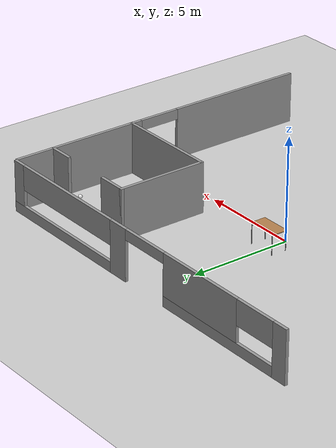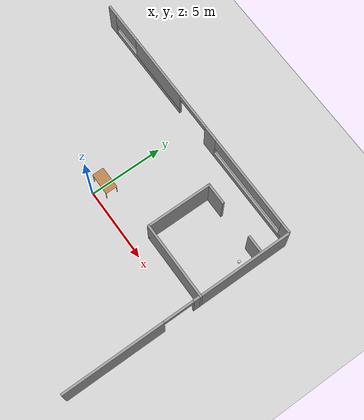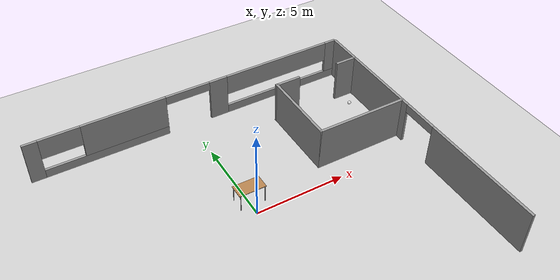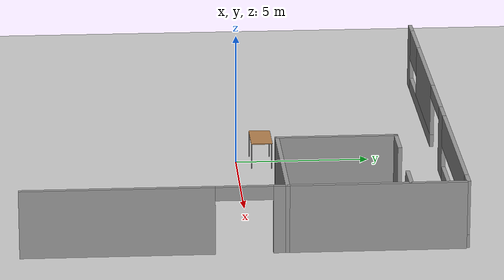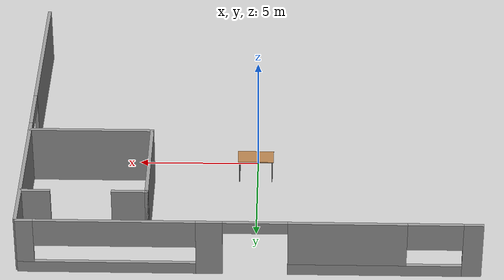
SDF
<sdf version="1.6">
 <world name="default">
  <model name="ground_plane">
   <static>1</static>
   <link name="link">
    <collision name="collision">
     <geometry><plane><normal>0 0 1</normal><size>100 100</size></plane></geometry>
     <surface>
      <contact><collide_bitmask>65535</collide_bitmask></contact>
      <friction><ode><mu>100</mu><mu2>50</mu2></ode></friction>
     </surface>
    </collision>
    <visual name="visual">
     <cast_shadows>0</cast_shadows>
     <geometry><plane><normal>0 0 1</normal><size>100 100</size></plane></geometry>
     <material>
      <script><uri>file://media/materials/scripts/gazebo.material</uri><name>Gazebo/Grey</name></script>
     </material>
    </visual>
   </link>
  </model>
  <model name="my_office">
   <link name="Wall_24">
    <pose>9.20995 -0.062568 0 0 -0 1.5708</pose>
    <visual name="Wall_24_Visual_0">
     <pose>-4.43928 0 1.25 0 -0 0</pose>
     <geometry><box><size>6.87144 0.15 2.5</size></box></geometry>
     <material>
      <script><uri>file://media/materials/scripts/gazebo.material</uri><name>Gazebo/Grey</name></script>
      <ambient>1 1 1 1</ambient>
      <shader type="pixel"/>
      <diffuse>0.7 0.7 0.7 1</diffuse>
      <specular>0.01 0.01 0.01 1</specular>
      <emissive>0 0 0 1</emissive>
     </material>
     <meta><layer>0</layer></meta>
    </visual>
    <visual name="Wall_24_Visual_1">
     <pose>4.45763 0 1.25 0 -0 0</pose>
     <geometry><box><size>6.83475 0.15 2.5</size></box></geometry>
     <material>
      <script><uri>file://media/materials/scripts/gazebo.material</uri><name>Gazebo/Grey</name></script>
      <ambient>1 1 1 1</ambient>
      <shader type="pixel"/>
      <diffuse>0.7 0.7 0.7 1</diffuse>
      <specular>0.01 0.01 0.01 1</specular>
      <emissive>0 0 0 1</emissive>
     </material>
     <meta><layer>0</layer></meta>
    </visual>
    <visual name="Wall_24_Visual_2">
     <pose>0.018345 0 2.25 0 -0 0</pose>
     <geometry><box><size>2.04381 0.15 0.5</size></box></geometry>
     <material>
      <script><uri>file://media/materials/scripts/gazebo.material</uri><name>Gazebo/Grey</name></script>
      <ambient>1 1 1 1</ambient>
      <shader type="pixel"/>
      <diffuse>0.7 0.7 0.7 1</diffuse>
      <specular>0.01 0.01 0.01 1</specular>
      <emissive>0 0 0 1</emissive>
     </material>
     <meta><layer>0</layer></meta>
    </visual>
    <collision name="Wall_24_Collision_1">
     <pose>4.45763 0 1.25 0 -0 0</pose>
     <geometry><box><size>6.83475 0.15 2.5</size></box></geometry>
     <surface>
      <friction>
       <ode><mu>1</mu><mu2>1</mu2><fdir1>0 0 0</fdir1><slip1>0</slip1><slip2>0</slip2></ode>
       <torsional>
        <coefficient>1</coefficient>
        <patch_radius>0</patch_radius>
        <surface_radius>0</surface_radius>
        <use_patch_radius>1</use_patch_radius>
        <ode><slip>0</slip></ode>
       </torsional>
      </friction>
      <bounce><restitution_coefficient>0</restitution_coefficient><threshold>1e+06</threshold></bounce>
      <contact>
       <collide_without_contact>0</collide_without_contact>
       <collide_without_contact_bitmask>1</collide_without_contact_bitmask>
       <collide_bitmask>1</collide_bitmask>
       <ode>
        <soft_cfm>0</soft_cfm>
        <soft_erp>0.2</soft_erp>
        <kp>1e+13</kp>
        <kd>1</kd>
        <max_vel>0.01</max_vel>
        <min_depth>0</min_depth>
       </ode>
       <bullet>
        <split_impulse>1</split_impulse>
        <split_impulse_penetration_threshold>-0.01</split_impulse_penetration_threshold>
        <soft_cfm>0</soft_cfm>
        <soft_erp>0.2</soft_erp>
        <kp>1e+13</kp>
        <kd>1</kd>
       </bullet>
      </contact>
     </surface>
    </collision>
    <collision name="Wall_24_Collision_0">
     <pose>-4.43928 0 1.25 0 -0 0</pose>
     <geometry><box><size>6.87144 0.15 2.5</size></box></geometry>
     <surface>
      <friction>
       <ode><mu>1</mu><mu2>1</mu2><fdir1>0 0 0</fdir1><slip1>0</slip1><slip2>0</slip2></ode>
       <torsional>
        <coefficient>1</coefficient>
        <patch_radius>0</patch_radius>
        <surface_radius>0</surface_radius>
        <use_patch_radius>1</use_patch_radius>
        <ode><slip>0</slip></ode>
       </torsional>
      </friction>
      <bounce><restitution_coefficient>0</restitution_coefficient><threshold>1e+06</threshold></bounce>
      <contact>
       <collide_without_contact>0</collide_without_contact>
       <collide_without_contact_bitmask>1</collide_without_contact_bitmask>
       <collide_bitmask>1</collide_bitmask>
       <ode>
        <soft_cfm>0</soft_cfm>
        <soft_erp>0.2</soft_erp>
        <kp>1e+13</kp>
        <kd>1</kd>
        <max_vel>0.01</max_vel>
        <min_depth>0</min_depth>
       </ode>
       <bullet>
        <split_impulse>1</split_impulse>
        <split_impulse_penetration_threshold>-0.01</split_impulse_penetration_threshold>
        <soft_cfm>0</soft_cfm>
        <soft_erp>0.2</soft_erp>
        <kp>1e+13</kp>
        <kd>1</kd>
       </bullet>
      </contact>
     </surface>
    </collision>
    <collision name="Wall_24_Collision_2">
     <pose>0.018345 0 2.25 0 -0 0</pose>
     <geometry><box><size>2.04381 0.15 0.5</size></box></geometry>
     <surface>
      <friction>
       <ode><mu>1</mu><mu2>1</mu2><fdir1>0 0 0</fdir1><slip1>0</slip1><slip2>0</slip2></ode>
       <torsional>
        <coefficient>1</coefficient>
        <patch_radius>0</patch_radius>
        <surface_radius>0</surface_radius>
        <use_patch_radius>1</use_patch_radius>
        <ode><slip>0</slip></ode>
       </torsional>
      </friction>
      <bounce><restitution_coefficient>0</restitution_coefficient><threshold>1e+06</threshold></bounce>
      <contact>
       <collide_without_contact>0</collide_without_contact>
       <collide_without_contact_bitmask>1</collide_without_contact_bitmask>
       <collide_bitmask>1</collide_bitmask>
       <ode>
        <soft_cfm>0</soft_cfm>
        <soft_erp>0.2</soft_erp>
        <kp>1e+13</kp>
        <kd>1</kd>
        <max_vel>0.01</max_vel>
        <min_depth>0</min_depth>
       </ode>
       <bullet>
        <split_impulse>1</split_impulse>
        <split_impulse_penetration_threshold>-0.01</split_impulse_penetration_threshold>
        <soft_cfm>0</soft_cfm>
        <soft_erp>0.2</soft_erp>
        <kp>1e+13</kp>
        <kd>1</kd>
       </bullet>
      </contact>
     </surface>
    </collision>
   </link>
   <link name="Wall_33">
    <pose>4.11345 3.64668 0 0 0 -1.5708</pose>
    <visual name="Wall_33_Visual">
     <pose>0 0 1.25 0 -0 0</pose>
     <geometry><box><size>4.5 0.15 2.5</size></box></geometry>
     <material>
      <script><uri>file://media/materials/scripts/gazebo.material</uri><name>Gazebo/Grey</name></script>
      <ambient>1 1 1 1</ambient>
      <shader type="pixel"/>
      <diffuse>0.7 0.7 0.7 1</diffuse>
      <specular>0.01 0.01 0.01 1</specular>
      <emissive>0 0 0 1</emissive>
     </material>
     <meta><layer>0</layer></meta>
    </visual>
    <collision name="Wall_33_Collision">
     <pose>0 0 1.25 0 -0 0</pose>
     <geometry><box><size>4.5 0.15 2.5</size></box></geometry>
     <surface>
      <friction>
       <ode><mu>1</mu><mu2>1</mu2><fdir1>0 0 0</fdir1><slip1>0</slip1><slip2>0</slip2></ode>
       <torsional>
        <coefficient>1</coefficient>
        <patch_radius>0</patch_radius>
        <surface_radius>0</surface_radius>
        <use_patch_radius>1</use_patch_radius>
        <ode><slip>0</slip></ode>
       </torsional>
      </friction>
      <bounce><restitution_coefficient>0</restitution_coefficient><threshold>1e+06</threshold></bounce>
      <contact>
       <collide_without_contact>0</collide_without_contact>
       <collide_without_contact_bitmask>1</collide_without_contact_bitmask>
       <collide_bitmask>1</collide_bitmask>
       <ode>
        <soft_cfm>0</soft_cfm>
        <soft_erp>0.2</soft_erp>
        <kp>1e+13</kp>
        <kd>1</kd>
        <max_vel>0.01</max_vel>
        <min_depth>0</min_depth>
       </ode>
       <bullet>
        <split_impulse>1</split_impulse>
        <split_impulse_penetration_threshold>-0.01</split_impulse_penetration_threshold>
        <soft_cfm>0</soft_cfm>
        <soft_erp>0.2</soft_erp>
        <kp>1e+13</kp>
        <kd>1</kd>
       </bullet>
      </contact>
     </surface>
    </collision>
   </link>
   <link name="Wall_34">
    <pose>6.66345 1.47168 0 0 -0 0</pose>
    <visual name="Wall_34_Visual">
     <pose>0 0 1.25 0 -0 0</pose>
     <geometry><box><size>5.25 0.15 2.5</size></box></geometry>
     <material>
      <script><uri>file://media/materials/scripts/gazebo.material</uri><name>Gazebo/Grey</name></script>
      <ambient>1 1 1 1</ambient>
      <shader type="pixel"/>
      <diffuse>0.7 0.7 0.7 1</diffuse>
      <specular>0.01 0.01 0.01 1</specular>
      <emissive>0 0 0 1</emissive>
     </material>
     <meta><layer>0</layer></meta>
    </visual>
    <collision name="Wall_34_Collision">
     <pose>0 0 1.25 0 -0 0</pose>
     <geometry><box><size>5.25 0.15 2.5</size></box></geometry>
     <surface>
      <friction>
       <ode><mu>1</mu><mu2>1</mu2><fdir1>0 0 0</fdir1><slip1>0</slip1><slip2>0</slip2></ode>
       <torsional>
        <coefficient>1</coefficient>
        <patch_radius>0</patch_radius>
        <surface_radius>0</surface_radius>
        <use_patch_radius>1</use_patch_radius>
        <ode><slip>0</slip></ode>
       </torsional>
      </friction>
      <bounce><restitution_coefficient>0</restitution_coefficient><threshold>1e+06</threshold></bounce>
      <contact>
       <collide_without_contact>0</collide_without_contact>
       <collide_without_contact_bitmask>1</collide_without_contact_bitmask>
       <collide_bitmask>1</collide_bitmask>
       <ode>
        <soft_cfm>0</soft_cfm>
        <soft_erp>0.2</soft_erp>
        <kp>1e+13</kp>
        <kd>1</kd>
        <max_vel>0.01</max_vel>
        <min_depth>0</min_depth>
       </ode>
       <bullet>
        <split_impulse>1</split_impulse>
        <split_impulse_penetration_threshold>-0.01</split_impulse_penetration_threshold>
        <soft_cfm>0</soft_cfm>
        <soft_erp>0.2</soft_erp>
        <kp>1e+13</kp>
        <kd>1</kd>
       </bullet>
      </contact>
     </surface>
    </collision>
   </link>
   <link name="Wall_41">
    <pose>4.78845 5.82168 0 0 -0 0</pose>
    <visual name="Wall_41_Visual">
     <pose>0 0 1.25 0 -0 0</pose>
     <geometry><box><size>1.5 0.15 2.5</size></box></geometry>
     <material>
      <script><uri>file://media/materials/scripts/gazebo.material</uri><name>Gazebo/Grey</name></script>
      <ambient>1 1 1 1</ambient>
      <shader type="pixel"/>
      <diffuse>0.7 0.7 0.7 1</diffuse>
      <specular>0.01 0.01 0.01 1</specular>
      <emissive>0 0 0 1</emissive>
     </material>
     <meta><layer>0</layer></meta>
    </visual>
    <collision name="Wall_41_Collision">
     <pose>0 0 1.25 0 -0 0</pose>
     <geometry><box><size>1.5 0.15 2.5</size></box></geometry>
     <surface>
      <friction>
       <ode><mu>1</mu><mu2>1</mu2><fdir1>0 0 0</fdir1><slip1>0</slip1><slip2>0</slip2></ode>
       <torsional>
        <coefficient>1</coefficient>
        <patch_radius>0</patch_radius>
        <surface_radius>0</surface_radius>
        <use_patch_radius>1</use_patch_radius>
        <ode><slip>0</slip></ode>
       </torsional>
      </friction>
      <bounce><restitution_coefficient>0</restitution_coefficient><threshold>1e+06</threshold></bounce>
      <contact>
       <collide_without_contact>0</collide_without_contact>
       <collide_without_contact_bitmask>1</collide_without_contact_bitmask>
       <collide_bitmask>1</collide_bitmask>
       <ode>
        <soft_cfm>0</soft_cfm>
        <soft_erp>0.2</soft_erp>
        <kp>1e+13</kp>
        <kd>1</kd>
        <max_vel>0.01</max_vel>
        <min_depth>0</min_depth>
       </ode>
       <bullet>
        <split_impulse>1</split_impulse>
        <split_impulse_penetration_threshold>-0.01</split_impulse_penetration_threshold>
        <soft_cfm>0</soft_cfm>
        <soft_erp>0.2</soft_erp>
        <kp>1e+13</kp>
        <kd>1</kd>
       </bullet>
      </contact>
     </surface>
    </collision>
   </link>
   <link name="Wall_43">
    <pose>8.61345 5.82168 0 0 -0 0</pose>
    <visual name="Wall_43_Visual">
     <pose>0 0 1.25 0 -0 0</pose>
     <geometry><box><size>1.25 0.15 2.5</size></box></geometry>
     <material>
      <script><uri>file://media/materials/scripts/gazebo.material</uri><name>Gazebo/Grey</name></script>
      <ambient>1 1 1 1</ambient>
      <shader type="pixel"/>
      <diffuse>0.7 0.7 0.7 1</diffuse>
      <specular>0.01 0.01 0.01 1</specular>
      <emissive>0 0 0 1</emissive>
     </material>
     <meta><layer>0</layer></meta>
    </visual>
    <collision name="Wall_43_Collision">
     <pose>0 0 1.25 0 -0 0</pose>
     <geometry><box><size>1.25 0.15 2.5</size></box></geometry>
     <surface>
      <friction>
       <ode><mu>1</mu><mu2>1</mu2><fdir1>0 0 0</fdir1><slip1>0</slip1><slip2>0</slip2></ode>
       <torsional>
        <coefficient>1</coefficient>
        <patch_radius>0</patch_radius>
        <surface_radius>0</surface_radius>
        <use_patch_radius>1</use_patch_radius>
        <ode><slip>0</slip></ode>
       </torsional>
      </friction>
      <bounce><restitution_coefficient>0</restitution_coefficient><threshold>1e+06</threshold></bounce>
      <contact>
       <collide_without_contact>0</collide_without_contact>
       <collide_without_contact_bitmask>1</collide_without_contact_bitmask>
       <collide_bitmask>1</collide_bitmask>
       <ode>
        <soft_cfm>0</soft_cfm>
        <soft_erp>0.2</soft_erp>
        <kp>1e+13</kp>
        <kd>1</kd>
        <max_vel>0.01</max_vel>
        <min_depth>0</min_depth>
       </ode>
       <bullet>
        <split_impulse>1</split_impulse>
        <split_impulse_penetration_threshold>-0.01</split_impulse_penetration_threshold>
        <soft_cfm>0</soft_cfm>
        <soft_erp>0.2</soft_erp>
        <kp>1e+13</kp>
        <kd>1</kd>
       </bullet>
      </contact>
     </surface>
    </collision>
   </link>
   <link name="Wall_52">
    <pose>-0.038447 7.84664 0 0 -0 0</pose>
    <visual name="Wall_52_Visual_0">
     <pose>-8.85482 0 1.25 0 -0 0</pose>
     <geometry><box><size>0.790356 0.15 2.5</size></box></geometry>
     <material>
      <script><uri>file://media/materials/scripts/gazebo.material</uri><name>Gazebo/Grey</name></script>
      <ambient>1 1 1 1</ambient>
      <shader type="pixel"/>
      <diffuse>0.7 0.7 0.7 1</diffuse>
      <specular>0.01 0.01 0.01 1</specular>
      <emissive>0 0 0 1</emissive>
     </material>
     <meta><layer>0</layer></meta>
    </visual>
    <visual name="Wall_52_Visual_1">
     <pose>1.58314 0 1.25 0 -0 0</pose>
     <geometry><box><size>1.06797 0.15 2.5</size></box></geometry>
     <material>
      <script><uri>file://media/materials/scripts/gazebo.material</uri><name>Gazebo/Grey</name></script>
      <ambient>1 1 1 1</ambient>
      <shader type="pixel"/>
      <diffuse>0.7 0.7 0.7 1</diffuse>
      <specular>0.01 0.01 0.01 1</specular>
      <emissive>0 0 0 1</emissive>
     </material>
     <meta><layer>0</layer></meta>
    </visual>
    <visual name="Wall_52_Visual_2">
     <pose>-4.99647 0 0.25 0 -0 0</pose>
     <geometry><box><size>6.92634 0.15 0.5</size></box></geometry>
     <material>
      <script><uri>file://media/materials/scripts/gazebo.material</uri><name>Gazebo/Grey</name></script>
      <ambient>1 1 1 1</ambient>
      <shader type="pixel"/>
      <diffuse>0.7 0.7 0.7 1</diffuse>
      <specular>0.01 0.01 0.01 1</specular>
      <emissive>0 0 0 1</emissive>
     </material>
     <meta><layer>0</layer></meta>
    </visual>
    <visual name="Wall_52_Visual_3">
     <pose>5.68356 0 0.25 0 -0 0</pose>
     <geometry><box><size>7.13287 0.15 0.5</size></box></geometry>
     <material>
      <script><uri>file://media/materials/scripts/gazebo.material</uri><name>Gazebo/Grey</name></script>
      <ambient>1 1 1 1</ambient>
      <shader type="pixel"/>
      <diffuse>0.7 0.7 0.7 1</diffuse>
      <specular>0.01 0.01 0.01 1</specular>
      <emissive>0 0 0 1</emissive>
     </material>
     <meta><layer>0</layer></meta>
    </visual>
    <visual name="Wall_52_Visual_4">
     <pose>-3.8929 0 1.5 0 -0 0</pose>
     <geometry><box><size>4.71919 0.15 2</size></box></geometry>
     <material>
      <script><uri>file://media/materials/scripts/gazebo.material</uri><name>Gazebo/Grey</name></script>
      <ambient>1 1 1 1</ambient>
      <shader type="pixel"/>
      <diffuse>0.7 0.7 0.7 1</diffuse>
      <specular>0.01 0.01 0.01 1</specular>
      <emissive>0 0 0 1</emissive>
     </material>
     <meta><layer>0</layer></meta>
    </visual>
    <visual name="Wall_52_Visual_5">
     <pose>-3.8929 0 1.5 0 -0 0</pose>
     <geometry><box><size>4.71919 0.15 2</size></box></geometry>
     <material>
      <script><uri>file://media/materials/scripts/gazebo.material</uri><name>Gazebo/Grey</name></script>
      <ambient>1 1 1 1</ambient>
      <shader type="pixel"/>
      <diffuse>0.7 0.7 0.7 1</diffuse>
      <specular>0.01 0.01 0.01 1</specular>
      <emissive>0 0 0 1</emissive>
     </material>
     <meta><layer>0</layer></meta>
    </visual>
    <visual name="Wall_52_Visual_6">
     <pose>8.89946 0 1.5 0 -0 0</pose>
     <geometry><box><size>0.701072 0.15 2</size></box></geometry>
     <material>
      <script><uri>file://media/materials/scripts/gazebo.material</uri><name>Gazebo/Grey</name></script>
      <ambient>1 1 1 1</ambient>
      <shader type="pixel"/>
      <diffuse>0.7 0.7 0.7 1</diffuse>
      <specular>0.01 0.01 0.01 1</specular>
      <emissive>0 0 0 1</emissive>
     </material>
     <meta><layer>0</layer></meta>
    </visual>
    <visual name="Wall_52_Visual_7">
     <pose>-7.35607 0 1.9 0 -0 0</pose>
     <geometry><box><size>2.20715 0.15 1.2</size></box></geometry>
     <material>
      <script><uri>file://media/materials/scripts/gazebo.material</uri><name>Gazebo/Grey</name></script>
      <ambient>1 1 1 1</ambient>
      <shader type="pixel"/>
      <diffuse>0.7 0.7 0.7 1</diffuse>
      <specular>0.01 0.01 0.01 1</specular>
      <emissive>0 0 0 1</emissive>
     </material>
     <meta><layer>0</layer></meta>
    </visual>
    <visual name="Wall_52_Visual_8">
     <pose>5.33303 0 1.9 0 -0 0</pose>
     <geometry><box><size>6.4318 0.15 1.2</size></box></geometry>
     <material>
      <script><uri>file://media/materials/scripts/gazebo.material</uri><name>Gazebo/Grey</name></script>
      <ambient>1 1 1 1</ambient>
      <shader type="pixel"/>
      <diffuse>0.7 0.7 0.7 1</diffuse>
      <specular>0.01 0.01 0.01 1</specular>
      <emissive>0 0 0 1</emissive>
     </material>
     <meta><layer>0</layer></meta>
    </visual>
    <visual name="Wall_52_Visual_9">
     <pose>-0.242073 0 2.25 0 -0 0</pose>
     <geometry><box><size>2.58246 0.15 0.5</size></box></geometry>
     <material>
      <script><uri>file://media/materials/scripts/gazebo.material</uri><name>Gazebo/Grey</name></script>
      <ambient>1 1 1 1</ambient>
      <shader type="pixel"/>
      <diffuse>0.7 0.7 0.7 1</diffuse>
      <specular>0.01 0.01 0.01 1</specular>
      <emissive>0 0 0 1</emissive>
     </material>
     <meta><layer>0</layer></meta>
    </visual>
    <visual name="Wall_52_Visual_10">
     <pose>-0.242073 0 2.25 0 -0 0</pose>
     <geometry><box><size>2.58246 0.15 0.5</size></box></geometry>
     <material>
      <script><uri>file://media/materials/scripts/gazebo.material</uri><name>Gazebo/Grey</name></script>
      <ambient>1 1 1 1</ambient>
      <shader type="pixel"/>
      <diffuse>0.7 0.7 0.7 1</diffuse>
      <specular>0.01 0.01 0.01 1</specular>
      <emissive>0 0 0 1</emissive>
     </material>
     <meta><layer>0</layer></meta>
    </visual>
    <collision name="Wall_52_Collision_0">
     <pose>-8.85482 0 1.25 0 -0 0</pose>
     <geometry><box><size>0.790356 0.15 2.5</size></box></geometry>
     <surface>
      <friction>
       <ode><mu>1</mu><mu2>1</mu2><fdir1>0 0 0</fdir1><slip1>0</slip1><slip2>0</slip2></ode>
       <torsional>
        <coefficient>1</coefficient>
        <patch_radius>0</patch_radius>
        <surface_radius>0</surface_radius>
        <use_patch_radius>1</use_patch_radius>
        <ode><slip>0</slip></ode>
       </torsional>
      </friction>
      <bounce><restitution_coefficient>0</restitution_coefficient><threshold>1e+06</threshold></bounce>
      <contact>
       <collide_without_contact>0</collide_without_contact>
       <collide_without_contact_bitmask>1</collide_without_contact_bitmask>
       <collide_bitmask>1</collide_bitmask>
       <ode>
        <soft_cfm>0</soft_cfm>
        <soft_erp>0.2</soft_erp>
        <kp>1e+13</kp>
        <kd>1</kd>
        <max_vel>0.01</max_vel>
        <min_depth>0</min_depth>
       </ode>
       <bullet>
        <split_impulse>1</split_impulse>
        <split_impulse_penetration_threshold>-0.01</split_impulse_penetration_threshold>
        <soft_cfm>0</soft_cfm>
        <soft_erp>0.2</soft_erp>
        <kp>1e+13</kp>
        <kd>1</kd>
       </bullet>
      </contact>
     </surface>
    </collision>
    <collision name="Wall_52_Collision_1">
     <pose>1.58314 0 1.25 0 -0 0</pose>
     <geometry><box><size>1.06797 0.15 2.5</size></box></geometry>
     <surface>
      <friction>
       <ode><mu>1</mu><mu2>1</mu2><fdir1>0 0 0</fdir1><slip1>0</slip1><slip2>0</slip2></ode>
       <torsional>
        <coefficient>1</coefficient>
        <patch_radius>0</patch_radius>
        <surface_radius>0</surface_radius>
        <use_patch_radius>1</use_patch_radius>
        <ode><slip>0</slip></ode>
       </torsional>
      </friction>
      <bounce><restitution_coefficient>0</restitution_coefficient><threshold>1e+06</threshold></bounce>
      <contact>
       <collide_without_contact>0</collide_without_contact>
       <collide_without_contact_bitmask>1</collide_without_contact_bitmask>
       <collide_bitmask>1</collide_bitmask>
       <ode>
        <soft_cfm>0</soft_cfm>
        <soft_erp>0.2</soft_erp>
        <kp>1e+13</kp>
        <kd>1</kd>
        <max_vel>0.01</max_vel>
        <min_depth>0</min_depth>
       </ode>
       <bullet>
        <split_impulse>1</split_impulse>
        <split_impulse_penetration_threshold>-0.01</split_impulse_penetration_threshold>
        <soft_cfm>0</soft_cfm>
        <soft_erp>0.2</soft_erp>
        <kp>1e+13</kp>
        <kd>1</kd>
       </bullet>
      </contact>
     </surface>
    </collision>
    <collision name="Wall_52_Collision_2">
     <pose>-4.99647 0 0.25 0 -0 0</pose>
     <geometry><box><size>6.92634 0.15 0.5</size></box></geometry>
     <surface>
      <friction>
       <ode><mu>1</mu><mu2>1</mu2><fdir1>0 0 0</fdir1><slip1>0</slip1><slip2>0</slip2></ode>
       <torsional>
        <coefficient>1</coefficient>
        <patch_radius>0</patch_radius>
        <surface_radius>0</surface_radius>
        <use_patch_radius>1</use_patch_radius>
        <ode><slip>0</slip></ode>
       </torsional>
      </friction>
      <bounce><restitution_coefficient>0</restitution_coefficient><threshold>1e+06</threshold></bounce>
      <contact>
       <collide_without_contact>0</collide_without_contact>
       <collide_without_contact_bitmask>1</collide_without_contact_bitmask>
       <collide_bitmask>1</collide_bitmask>
       <ode>
        <soft_cfm>0</soft_cfm>
        <soft_erp>0.2</soft_erp>
        <kp>1e+13</kp>
        <kd>1</kd>
        <max_vel>0.01</max_vel>
        <min_depth>0</min_depth>
       </ode>
       <bullet>
        <split_impulse>1</split_impulse>
        <split_impulse_penetration_threshold>-0.01</split_impulse_penetration_threshold>
        <soft_cfm>0</soft_cfm>
        <soft_erp>0.2</soft_erp>
        <kp>1e+13</kp>
        <kd>1</kd>
       </bullet>
      </contact>
     </surface>
    </collision>
    <collision name="Wall_52_Collision_3">
     <pose>5.68356 0 0.25 0 -0 0</pose>
     <geometry><box><size>7.13287 0.15 0.5</size></box></geometry>
     <surface>
      <friction>
       <ode><mu>1</mu><mu2>1</mu2><fdir1>0 0 0</fdir1><slip1>0</slip1><slip2>0</slip2></ode>
       <torsional>
        <coefficient>1</coefficient>
        <patch_radius>0</patch_radius>
        <surface_radius>0</surface_radius>
        <use_patch_radius>1</use_patch_radius>
        <ode><slip>0</slip></ode>
       </torsional>
      </friction>
      <bounce><restitution_coefficient>0</restitution_coefficient><threshold>1e+06</threshold></bounce>
      <contact>
       <collide_without_contact>0</collide_without_contact>
       <collide_without_contact_bitmask>1</collide_without_contact_bitmask>
       <collide_bitmask>1</collide_bitmask>
       <ode>
        <soft_cfm>0</soft_cfm>
        <soft_erp>0.2</soft_erp>
        <kp>1e+13</kp>
        <kd>1</kd>
        <max_vel>0.01</max_vel>
        <min_depth>0</min_depth>
       </ode>
       <bullet>
        <split_impulse>1</split_impulse>
        <split_impulse_penetration_threshold>-0.01</split_impulse_penetration_threshold>
        <soft_cfm>0</soft_cfm>
        <soft_erp>0.2</soft_erp>
        <kp>1e+13</kp>
        <kd>1</kd>
       </bullet>
      </contact>
     </surface>
    </collision>
    <collision name="Wall_52_Collision_4">
     <pose>-3.8929 0 1.5 0 -0 0</pose>
     <geometry><box><size>4.71919 0.15 2</size></box></geometry>
     <surface>
      <friction>
       <ode><mu>1</mu><mu2>1</mu2><fdir1>0 0 0</fdir1><slip1>0</slip1><slip2>0</slip2></ode>
       <torsional>
        <coefficient>1</coefficient>
        <patch_radius>0</patch_radius>
        <surface_radius>0</surface_radius>
        <use_patch_radius>1</use_patch_radius>
        <ode><slip>0</slip></ode>
       </torsional>
      </friction>
      <bounce><restitution_coefficient>0</restitution_coefficient><threshold>1e+06</threshold></bounce>
      <contact>
       <collide_without_contact>0</collide_without_contact>
       <collide_without_contact_bitmask>1</collide_without_contact_bitmask>
       <collide_bitmask>1</collide_bitmask>
       <ode>
        <soft_cfm>0</soft_cfm>
        <soft_erp>0.2</soft_erp>
        <kp>1e+13</kp>
        <kd>1</kd>
        <max_vel>0.01</max_vel>
        <min_depth>0</min_depth>
       </ode>
       <bullet>
        <split_impulse>1</split_impulse>
        <split_impulse_penetration_threshold>-0.01</split_impulse_penetration_threshold>
        <soft_cfm>0</soft_cfm>
        <soft_erp>0.2</soft_erp>
        <kp>1e+13</kp>
        <kd>1</kd>
       </bullet>
      </contact>
     </surface>
    </collision>
    <collision name="Wall_52_Collision_5">
     <pose>-3.8929 0 1.5 0 -0 0</pose>
     <geometry><box><size>4.71919 0.15 2</size></box></geometry>
     <surface>
      <friction>
       <ode><mu>1</mu><mu2>1</mu2><fdir1>0 0 0</fdir1><slip1>0</slip1><slip2>0</slip2></ode>
       <torsional>
        <coefficient>1</coefficient>
        <patch_radius>0</patch_radius>
        <surface_radius>0</surface_radius>
        <use_patch_radius>1</use_patch_radius>
        <ode><slip>0</slip></ode>
       </torsional>
      </friction>
      <bounce><restitution_coefficient>0</restitution_coefficient><threshold>1e+06</threshold></bounce>
      <contact>
       <collide_without_contact>0</collide_without_contact>
       <collide_without_contact_bitmask>1</collide_without_contact_bitmask>
       <collide_bitmask>1</collide_bitmask>
       <ode>
        <soft_cfm>0</soft_cfm>
        <soft_erp>0.2</soft_erp>
        <kp>1e+13</kp>
        <kd>1</kd>
        <max_vel>0.01</max_vel>
        <min_depth>0</min_depth>
       </ode>
       <bullet>
        <split_impulse>1</split_impulse>
        <split_impulse_penetration_threshold>-0.01</split_impulse_penetration_threshold>
        <soft_cfm>0</soft_cfm>
        <soft_erp>0.2</soft_erp>
        <kp>1e+13</kp>
        <kd>1</kd>
       </bullet>
      </contact>
     </surface>
    </collision>
    <collision name="Wall_52_Collision_7">
     <pose>-7.35607 0 1.9 0 -0 0</pose>
     <geometry><box><size>2.20715 0.15 1.2</size></box></geometry>
     <surface>
      <friction>
       <ode><mu>1</mu><mu2>1</mu2><fdir1>0 0 0</fdir1><slip1>0</slip1><slip2>0</slip2></ode>
       <torsional>
        <coefficient>1</coefficient>
        <patch_radius>0</patch_radius>
        <surface_radius>0</surface_radius>
        <use_patch_radius>1</use_patch_radius>
        <ode><slip>0</slip></ode>
       </torsional>
      </friction>
      <bounce><restitution_coefficient>0</restitution_coefficient><threshold>1e+06</threshold></bounce>
      <contact>
       <collide_without_contact>0</collide_without_contact>
       <collide_without_contact_bitmask>1</collide_without_contact_bitmask>
       <collide_bitmask>1</collide_bitmask>
       <ode>
        <soft_cfm>0</soft_cfm>
        <soft_erp>0.2</soft_erp>
        <kp>1e+13</kp>
        <kd>1</kd>
        <max_vel>0.01</max_vel>
        <min_depth>0</min_depth>
       </ode>
       <bullet>
        <split_impulse>1</split_impulse>
        <split_impulse_penetration_threshold>-0.01</split_impulse_penetration_threshold>
        <soft_cfm>0</soft_cfm>
        <soft_erp>0.2</soft_erp>
        <kp>1e+13</kp>
        <kd>1</kd>
       </bullet>
      </contact>
     </surface>
    </collision>
    <collision name="Wall_52_Collision_6">
     <pose>8.89946 0 1.5 0 -0 0</pose>
     <geometry><box><size>0.701072 0.15 2</size></box></geometry>
     <surface>
      <friction>
       <ode><mu>1</mu><mu2>1</mu2><fdir1>0 0 0</fdir1><slip1>0</slip1><slip2>0</slip2></ode>
       <torsional>
        <coefficient>1</coefficient>
        <patch_radius>0</patch_radius>
        <surface_radius>0</surface_radius>
        <use_patch_radius>1</use_patch_radius>
        <ode><slip>0</slip></ode>
       </torsional>
      </friction>
      <bounce><restitution_coefficient>0</restitution_coefficient><threshold>1e+06</threshold></bounce>
      <contact>
       <collide_without_contact>0</collide_without_contact>
       <collide_without_contact_bitmask>1</collide_without_contact_bitmask>
       <collide_bitmask>1</collide_bitmask>
       <ode>
        <soft_cfm>0</soft_cfm>
        <soft_erp>0.2</soft_erp>
        <kp>1e+13</kp>
        <kd>1</kd>
        <max_vel>0.01</max_vel>
        <min_depth>0</min_depth>
       </ode>
       <bullet>
        <split_impulse>1</split_impulse>
        <split_impulse_penetration_threshold>-0.01</split_impulse_penetration_threshold>
        <soft_cfm>0</soft_cfm>
        <soft_erp>0.2</soft_erp>
        <kp>1e+13</kp>
        <kd>1</kd>
       </bullet>
      </contact>
     </surface>
    </collision>
    <collision name="Wall_52_Collision_8">
     <pose>5.33303 0 1.9 0 -0 0</pose>
     <geometry><box><size>6.4318 0.15 1.2</size></box></geometry>
     <surface>
      <friction>
       <ode><mu>1</mu><mu2>1</mu2><fdir1>0 0 0</fdir1><slip1>0</slip1><slip2>0</slip2></ode>
       <torsional>
        <coefficient>1</coefficient>
        <patch_radius>0</patch_radius>
        <surface_radius>0</surface_radius>
        <use_patch_radius>1</use_patch_radius>
        <ode><slip>0</slip></ode>
       </torsional>
      </friction>
      <bounce><restitution_coefficient>0</restitution_coefficient><threshold>1e+06</threshold></bounce>
      <contact>
       <collide_without_contact>0</collide_without_contact>
       <collide_without_contact_bitmask>1</collide_without_contact_bitmask>
       <collide_bitmask>1</collide_bitmask>
       <ode>
        <soft_cfm>0</soft_cfm>
        <soft_erp>0.2</soft_erp>
        <kp>1e+13</kp>
        <kd>1</kd>
        <max_vel>0.01</max_vel>
        <min_depth>0</min_depth>
       </ode>
       <bullet>
        <split_impulse>1</split_impulse>
        <split_impulse_penetration_threshold>-0.01</split_impulse_penetration_threshold>
        <soft_cfm>0</soft_cfm>
        <soft_erp>0.2</soft_erp>
        <kp>1e+13</kp>
        <kd>1</kd>
       </bullet>
      </contact>
     </surface>
    </collision>
    <collision name="Wall_52_Collision_9">
     <pose>-0.242073 0 2.25 0 -0 0</pose>
     <geometry><box><size>2.58246 0.15 0.5</size></box></geometry>
     <surface>
      <friction>
       <ode><mu>1</mu><mu2>1</mu2><fdir1>0 0 0</fdir1><slip1>0</slip1><slip2>0</slip2></ode>
       <torsional>
        <coefficient>1</coefficient>
        <patch_radius>0</patch_radius>
        <surface_radius>0</surface_radius>
        <use_patch_radius>1</use_patch_radius>
        <ode><slip>0</slip></ode>
       </torsional>
      </friction>
      <bounce><restitution_coefficient>0</restitution_coefficient><threshold>1e+06</threshold></bounce>
      <contact>
       <collide_without_contact>0</collide_without_contact>
       <collide_without_contact_bitmask>1</collide_without_contact_bitmask>
       <collide_bitmask>1</collide_bitmask>
       <ode>
        <soft_cfm>0</soft_cfm>
        <soft_erp>0.2</soft_erp>
        <kp>1e+13</kp>
        <kd>1</kd>
        <max_vel>0.01</max_vel>
        <min_depth>0</min_depth>
       </ode>
       <bullet>
        <split_impulse>1</split_impulse>
        <split_impulse_penetration_threshold>-0.01</split_impulse_penetration_threshold>
        <soft_cfm>0</soft_cfm>
        <soft_erp>0.2</soft_erp>
        <kp>1e+13</kp>
        <kd>1</kd>
       </bullet>
      </contact>
     </surface>
    </collision>
    <collision name="Wall_52_Collision_10">
     <pose>-0.242073 0 2.25 0 -0 0</pose>
     <geometry><box><size>2.58246 0.15 0.5</size></box></geometry>
     <surface>
      <friction>
       <ode><mu>1</mu><mu2>1</mu2><fdir1>0 0 0</fdir1><slip1>0</slip1><slip2>0</slip2></ode>
       <torsional>
        <coefficient>1</coefficient>
        <patch_radius>0</patch_radius>
        <surface_radius>0</surface_radius>
        <use_patch_radius>1</use_patch_radius>
        <ode><slip>0</slip></ode>
       </torsional>
      </friction>
      <bounce><restitution_coefficient>0</restitution_coefficient><threshold>1e+06</threshold></bounce>
      <contact>
       <collide_without_contact>0</collide_without_contact>
       <collide_without_contact_bitmask>1</collide_without_contact_bitmask>
       <collide_bitmask>1</collide_bitmask>
       <ode>
        <soft_cfm>0</soft_cfm>
        <soft_erp>0.2</soft_erp>
        <kp>1e+13</kp>
        <kd>1</kd>
        <max_vel>0.01</max_vel>
        <min_depth>0</min_depth>
       </ode>
       <bullet>
        <split_impulse>1</split_impulse>
        <split_impulse_penetration_threshold>-0.01</split_impulse_penetration_threshold>
        <soft_cfm>0</soft_cfm>
        <soft_erp>0.2</soft_erp>
        <kp>1e+13</kp>
        <kd>1</kd>
       </bullet>
      </contact>
     </surface>
    </collision>
   </link>
   <static>1</static>
   <pose>0.28622 -0.24385 0 0 -0 0</pose>
  </model>
  <model name="table_2">
   <static>1</static>
   <link name="link">
    <collision name="surface">
     <pose>0 0 1 0 -0 0</pose>
     <geometry><box><size>1.5 0.8 0.03</size></box></geometry>
     <surface><friction><ode><mu>0.6</mu><mu2>0.6</mu2></ode></friction></surface>
    </collision>
    <visual name="visual1">
     <pose>0 0 1 0 -0 0</pose>
     <geometry><box><size>1.5 0.8 0.03</size></box></geometry>
     <material>
      <script><uri>file://media/materials/scripts/gazebo.material</uri><name>Gazebo/Wood</name></script>
     </material>
    </visual>
    <collision name="front_left_leg">
     <pose>0.68 0.38 0.5 0 -0 0</pose>
     <geometry><cylinder><radius>0.02</radius><length>1</length></cylinder></geometry>
    </collision>
    <visual name="front_left_leg">
     <pose>0.68 0.38 0.5 0 -0 0</pose>
     <geometry><cylinder><radius>0.02</radius><length>1</length></cylinder></geometry>
     <material>
      <script><uri>file://media/materials/scripts/gazebo.material</uri><name>Gazebo/Grey</name></script>
     </material>
    </visual>
    <collision name="front_right_leg">
     <pose>0.68 -0.38 0.5 0 -0 0</pose>
     <geometry><cylinder><radius>0.02</radius><length>1</length></cylinder></geometry>
    </collision>
    <visual name="front_right_leg">
     <pose>0.68 -0.38 0.5 0 -0 0</pose>
     <geometry><cylinder><radius>0.02</radius><length>1</length></cylinder></geometry>
     <material>
      <script><uri>file://media/materials/scripts/gazebo.material</uri><name>Gazebo/Grey</name></script>
     </material>
    </visual>
    <collision name="back_right_leg">
     <pose>-0.68 -0.38 0.5 0 -0 0</pose>
     <geometry><cylinder><radius>0.02</radius><length>1</length></cylinder></geometry>
    </collision>
    <visual name="back_right_leg">
     <pose>-0.68 -0.38 0.5 0 -0 0</pose>
     <geometry><cylinder><radius>0.02</radius><length>1</length></cylinder></geometry>
     <material>
      <script><uri>file://media/materials/scripts/gazebo.material</uri><name>Gazebo/Grey</name></script>
     </material>
    </visual>
    <collision name="back_left_leg">
     <pose>-0.68 0.38 0.5 0 -0 0</pose>
     <geometry><cylinder><radius>0.02</radius><length>1</length></cylinder></geometry>
    </collision>
    <visual name="back_left_leg">
     <pose>-0.68 0.38 0.5 0 -0 0</pose>
     <geometry><cylinder><radius>0.02</radius><length>1</length></cylinder></geometry>
     <material>
      <script><uri>file://media/materials/scripts/gazebo.material</uri><name>Gazebo/Grey</name></script>
     </material>
    </visual>
   </link>
   <pose>0.080919 0.929344 0 0 -0 0</pose>
  </model>
  <model name="my_ball">
   <link name="link">
    <inertial>
     <mass>1</mass>
     <inertia><ixx>0.1</ixx><ixy>0</ixy><ixz>0</ixz><iyy>0.1</iyy><iyz>0</iyz><izz>0.1</izz></inertia>
    </inertial>
    <visual name="visual">
     <geometry><sphere><radius>0.1</radius></sphere></geometry>
     <material>
      <script><name>Gazebo/White</name><uri>file://media/materials/scripts/gazebo.material</uri></script>
      <shader type="pixel"><normal_map>__default__</normal_map></shader>
      <ambient>1 1 1 1</ambient>
      <diffuse>1 1 1 1</diffuse>
      <specular>1 1 1 1</specular>
      <emissive>1 1 1 1</emissive>
     </material>
    </visual>
    <collision name="collision">
     <geometry><sphere><radius>0.1</radius></sphere></geometry>
     <surface>
      <friction>
       <ode><mu>1</mu><mu2>1</mu2><fdir1>0 0 0</fdir1><slip1>0</slip1><slip2>0</slip2></ode>
       <torsional>
        <coefficient>1</coefficient>
        <patch_radius>0</patch_radius>
        <surface_radius>0</surface_radius>
        <use_patch_radius>1</use_patch_radius>
        <ode><slip>0</slip></ode>
       </torsional>
      </friction>
      <bounce><restitution_coefficient>0</restitution_coefficient><threshold>1e+06</threshold></bounce>
      <contact>
       <collide_without_contact>0</collide_without_contact>
       <collide_without_contact_bitmask>1</collide_without_contact_bitmask>
       <collide_bitmask>1</collide_bitmask>
       <ode>
        <soft_cfm>0</soft_cfm>
        <soft_erp>0.2</soft_erp>
        <kp>1e+13</kp>
        <kd>1</kd>
        <max_vel>0.01</max_vel>
        <min_depth>0</min_depth>
       </ode>
       <bullet>
        <split_impulse>1</split_impulse>
        <split_impulse_penetration_threshold>-0.01</split_impulse_penetration_threshold>
        <soft_cfm>0</soft_cfm>
        <soft_erp>0.2</soft_erp>
        <kp>1e+13</kp>
        <kd>1</kd>
       </bullet>
      </contact>
     </surface>
    </collision>
   </link>
   <static>0</static>
   <pose>8.75247 4.70153 0.1 0 -0 0</pose>
  </model>
 </world>
</sdf>
